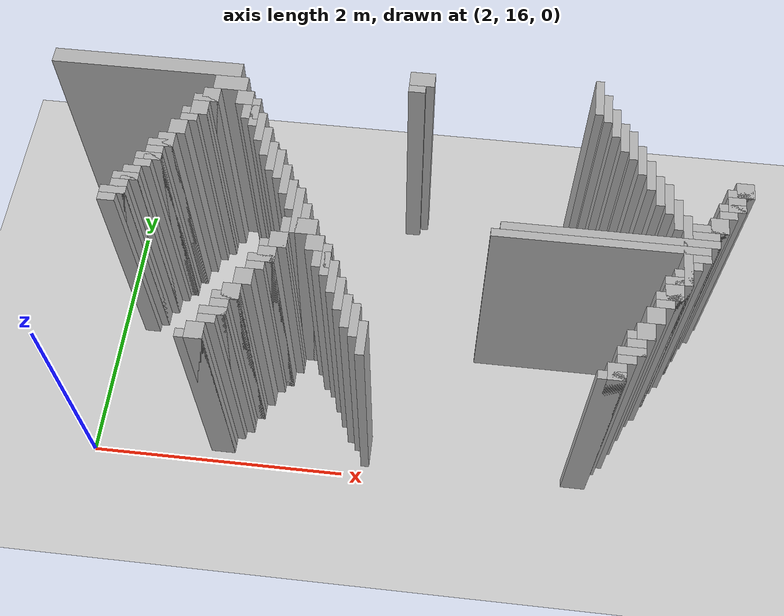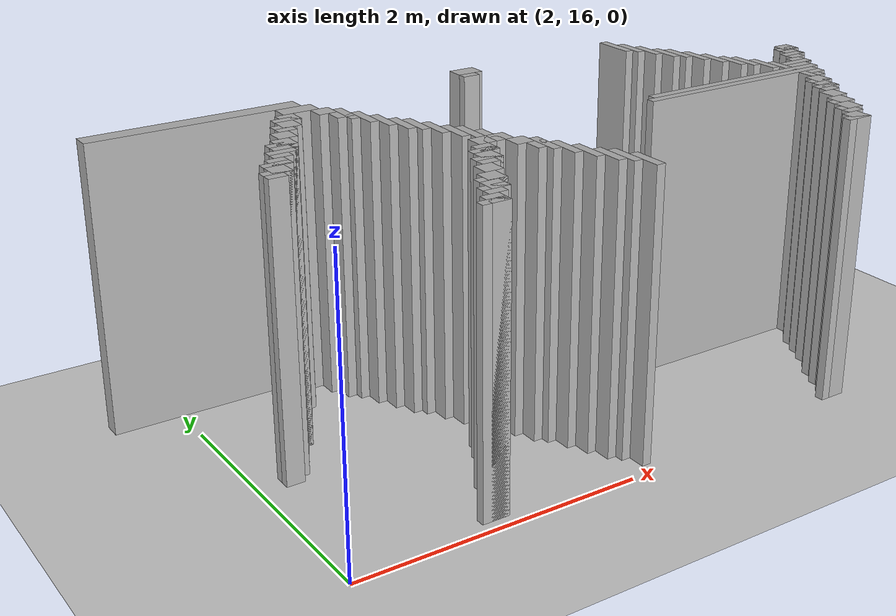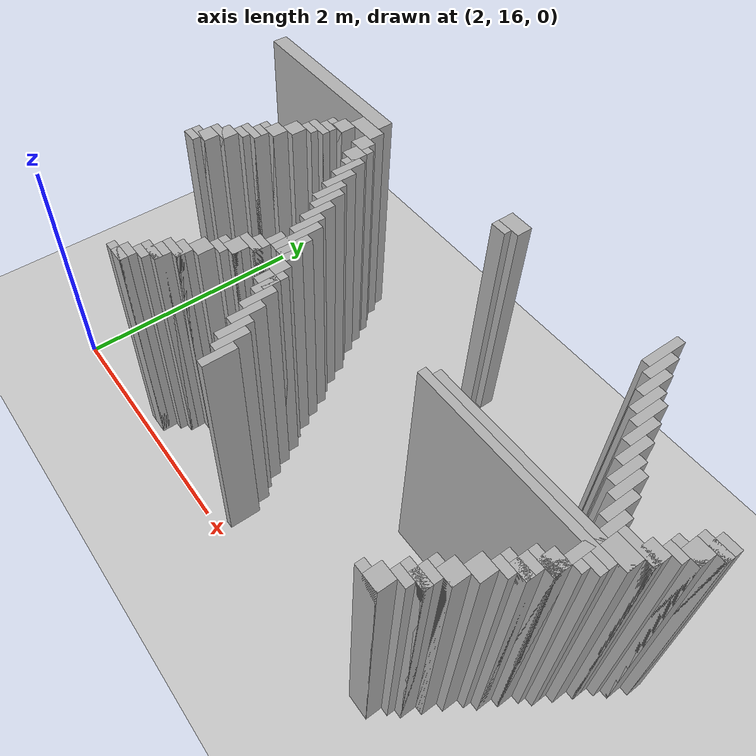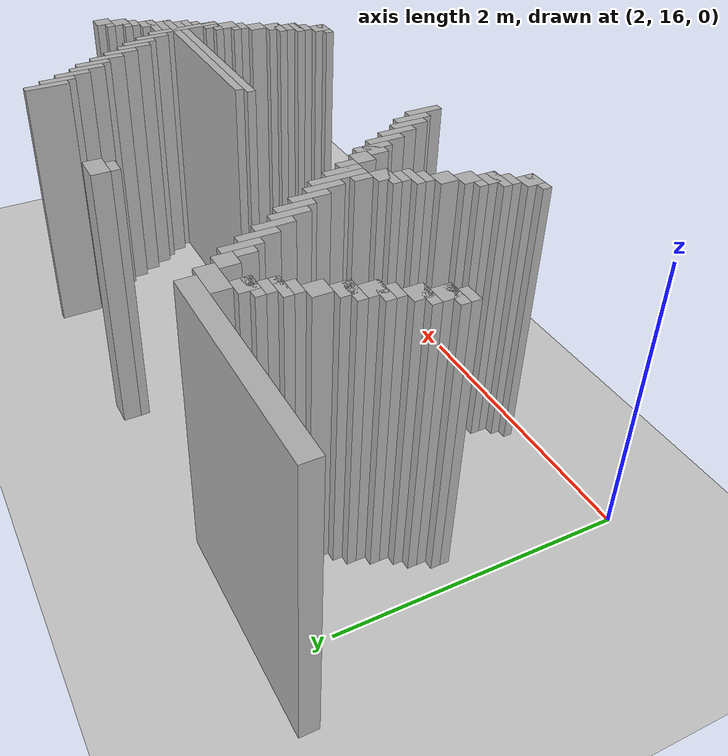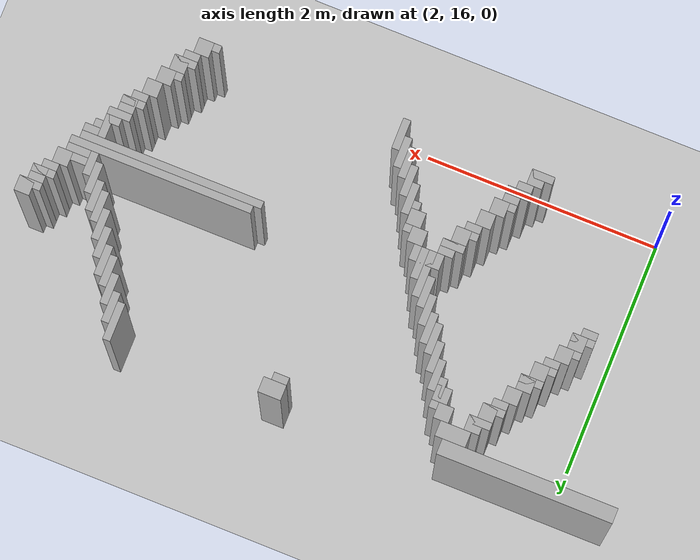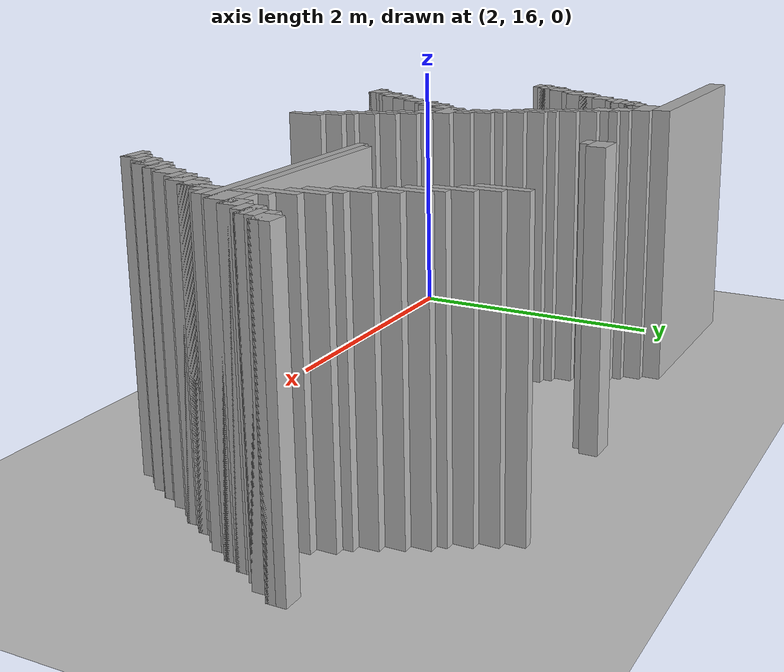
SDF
<sdf version="1.6">
 <world name="slam_world">
  <model name="ground_plane">
   <static>true</static>
   <link name="link">
    <collision name="collision">
     <geometry><plane><normal>0 0 1</normal><size>100 100</size></plane></geometry>
    </collision>
    <visual name="visual">
     <geometry><plane><normal>0 0 1</normal><size>100 100</size></plane></geometry>
     <material>
      <ambient>0.8 0.8 0.8 1</ambient>
      <diffuse>0.8 0.8 0.8 1</diffuse>
      <specular>0.8 0.8 0.8 1</specular>
     </material>
    </visual>
   </link>
  </model>
  <model name="wall_563">
   <static>true</static>
   <pose>5.712765957446808 18.414893617021274 1.0 0 0 0</pose>
   <link name="link">
    <collision name="collision">
     <geometry><box><size>0.06382978723404255 0.3191489361702127 2.0</size></box></geometry>
    </collision>
    <visual name="visual">
     <geometry><box><size>0.06382978723404255 0.3191489361702127 2.0</size></box></geometry>
     <material><ambient>0.5 0.5 0.5 1</ambient><diffuse>0.7 0.7 0.7 1</diffuse></material>
    </visual>
   </link>
  </model>
  <model name="wall_569">
   <static>true</static>
   <pose>4.372340425531915 18.446808510638295 1.0 0 0 0</pose>
   <link name="link">
    <collision name="collision">
     <geometry><box><size>0.19148936170212766 0.1276595744680851 2.0</size></box></geometry>
    </collision>
    <visual name="visual">
     <geometry><box><size>0.19148936170212766 0.1276595744680851 2.0</size></box></geometry>
     <material><ambient>0.5 0.5 0.5 1</ambient><diffuse>0.7 0.7 0.7 1</diffuse></material>
    </visual>
   </link>
  </model>
  <model name="wall_575">
   <static>true</static>
   <pose>2.2659574468085104 18.382978723404253 1.0 0 0 0</pose>
   <link name="link">
    <collision name="collision">
     <geometry><box><size>1.4680851063829785 0.1276595744680851 2.0</size></box></geometry>
    </collision>
    <visual name="visual">
     <geometry><box><size>1.4680851063829785 0.1276595744680851 2.0</size></box></geometry>
     <material><ambient>0.5 0.5 0.5 1</ambient><diffuse>0.7 0.7 0.7 1</diffuse></material>
    </visual>
   </link>
  </model>
  <model name="wall_576">
   <static>true</static>
   <pose>5.776595744680851 18.319148936170212 1.0 0 0 0</pose>
   <link name="link">
    <collision name="collision">
     <geometry><box><size>0.06382978723404255 0.2553191489361702 2.0</size></box></geometry>
    </collision>
    <visual name="visual">
     <geometry><box><size>0.06382978723404255 0.2553191489361702 2.0</size></box></geometry>
     <material><ambient>0.5 0.5 0.5 1</ambient><diffuse>0.7 0.7 0.7 1</diffuse></material>
    </visual>
   </link>
  </model>
  <model name="wall_582">
   <static>true</static>
   <pose>4.340425531914893 18.351063829787233 1.0 0 0 0</pose>
   <link name="link">
    <collision name="collision">
     <geometry><box><size>0.1276595744680851 0.06382978723404255 2.0</size></box></geometry>
    </collision>
    <visual name="visual">
     <geometry><box><size>0.1276595744680851 0.06382978723404255 2.0</size></box></geometry>
     <material><ambient>0.5 0.5 0.5 1</ambient><diffuse>0.7 0.7 0.7 1</diffuse></material>
    </visual>
   </link>
  </model>
  <model name="wall_587">
   <static>true</static>
   <pose>2.936170212765957 18.25531914893617 1.0 0 0 0</pose>
   <link name="link">
    <collision name="collision">
     <geometry><box><size>0.2553191489361702 0.1276595744680851 2.0</size></box></geometry>
    </collision>
    <visual name="visual">
     <geometry><box><size>0.2553191489361702 0.1276595744680851 2.0</size></box></geometry>
     <material><ambient>0.5 0.5 0.5 1</ambient><diffuse>0.7 0.7 0.7 1</diffuse></material>
    </visual>
   </link>
  </model>
  <model name="wall_588">
   <static>true</static>
   <pose>5.840425531914893 18.191489361702125 1.0 0 0 0</pose>
   <link name="link">
    <collision name="collision">
     <geometry><box><size>0.06382978723404255 0.2553191489361702 2.0</size></box></geometry>
    </collision>
    <visual name="visual">
     <geometry><box><size>0.06382978723404255 0.2553191489361702 2.0</size></box></geometry>
     <material><ambient>0.5 0.5 0.5 1</ambient><diffuse>0.7 0.7 0.7 1</diffuse></material>
    </visual>
   </link>
  </model>
  <model name="wall_601">
   <static>true</static>
   <pose>2.808510638297872 18.127659574468083 1.0 0 0 0</pose>
   <link name="link">
    <collision name="collision">
     <geometry><box><size>0.1276595744680851 0.1276595744680851 2.0</size></box></geometry>
    </collision>
    <visual name="visual">
     <geometry><box><size>0.1276595744680851 0.1276595744680851 2.0</size></box></geometry>
     <material><ambient>0.5 0.5 0.5 1</ambient><diffuse>0.7 0.7 0.7 1</diffuse></material>
    </visual>
   </link>
  </model>
  <model name="wall_602">
   <static>true</static>
   <pose>3.0638297872340425 18.127659574468083 1.0 0 0 0</pose>
   <link name="link">
    <collision name="collision">
     <geometry><box><size>0.1276595744680851 0.1276595744680851 2.0</size></box></geometry>
    </collision>
    <visual name="visual">
     <geometry><box><size>0.1276595744680851 0.1276595744680851 2.0</size></box></geometry>
     <material><ambient>0.5 0.5 0.5 1</ambient><diffuse>0.7 0.7 0.7 1</diffuse></material>
    </visual>
   </link>
  </model>
  <model name="wall_603">
   <static>true</static>
   <pose>5.904255319148936 18.06382978723404 1.0 0 0 0</pose>
   <link name="link">
    <collision name="collision">
     <geometry><box><size>0.06382978723404255 0.2553191489361702 2.0</size></box></geometry>
    </collision>
    <visual name="visual">
     <geometry><box><size>0.06382978723404255 0.2553191489361702 2.0</size></box></geometry>
     <material><ambient>0.5 0.5 0.5 1</ambient><diffuse>0.7 0.7 0.7 1</diffuse></material>
    </visual>
   </link>
  </model>
  <model name="wall_610">
   <static>true</static>
   <pose>2.7765957446808507 18.095744680851062 1.0 0 0 0</pose>
   <link name="link">
    <collision name="collision">
     <geometry><box><size>0.19148936170212766 0.06382978723404255 2.0</size></box></geometry>
    </collision>
    <visual name="visual">
     <geometry><box><size>0.19148936170212766 0.06382978723404255 2.0</size></box></geometry>
     <material><ambient>0.5 0.5 0.5 1</ambient><diffuse>0.7 0.7 0.7 1</diffuse></material>
    </visual>
   </link>
  </model>
  <model name="wall_611">
   <static>true</static>
   <pose>3.1595744680851063 18.0 1.0 0 0 0</pose>
   <link name="link">
    <collision name="collision">
     <geometry><box><size>0.06382978723404255 0.2553191489361702 2.0</size></box></geometry>
    </collision>
    <visual name="visual">
     <geometry><box><size>0.06382978723404255 0.2553191489361702 2.0</size></box></geometry>
     <material><ambient>0.5 0.5 0.5 1</ambient><diffuse>0.7 0.7 0.7 1</diffuse></material>
    </visual>
   </link>
  </model>
  <model name="wall_612">
   <static>true</static>
   <pose>5.968085106382978 18.0 1.0 0 0 0</pose>
   <link name="link">
    <collision name="collision">
     <geometry><box><size>0.06382978723404255 0.2553191489361702 2.0</size></box></geometry>
    </collision>
    <visual name="visual">
     <geometry><box><size>0.06382978723404255 0.2553191489361702 2.0</size></box></geometry>
     <material><ambient>0.5 0.5 0.5 1</ambient><diffuse>0.7 0.7 0.7 1</diffuse></material>
    </visual>
   </link>
  </model>
  <model name="wall_618">
   <static>true</static>
   <pose>2.7446808510638294 18.0 1.0 0 0 0</pose>
   <link name="link">
    <collision name="collision">
     <geometry><box><size>0.1276595744680851 0.1276595744680851 2.0</size></box></geometry>
    </collision>
    <visual name="visual">
     <geometry><box><size>0.1276595744680851 0.1276595744680851 2.0</size></box></geometry>
     <material><ambient>0.5 0.5 0.5 1</ambient><diffuse>0.7 0.7 0.7 1</diffuse></material>
    </visual>
   </link>
  </model>
  <model name="wall_619">
   <static>true</static>
   <pose>3.127659574468085 18.0 1.0 0 0 0</pose>
   <link name="link">
    <collision name="collision">
     <geometry><box><size>0.1276595744680851 0.1276595744680851 2.0</size></box></geometry>
    </collision>
    <visual name="visual">
     <geometry><box><size>0.1276595744680851 0.1276595744680851 2.0</size></box></geometry>
     <material><ambient>0.5 0.5 0.5 1</ambient><diffuse>0.7 0.7 0.7 1</diffuse></material>
    </visual>
   </link>
  </model>
  <model name="wall_625">
   <static>true</static>
   <pose>2.712765957446808 17.968085106382976 1.0 0 0 0</pose>
   <link name="link">
    <collision name="collision">
     <geometry><box><size>0.19148936170212766 0.06382978723404255 2.0</size></box></geometry>
    </collision>
    <visual name="visual">
     <geometry><box><size>0.19148936170212766 0.06382978723404255 2.0</size></box></geometry>
     <material><ambient>0.5 0.5 0.5 1</ambient><diffuse>0.7 0.7 0.7 1</diffuse></material>
    </visual>
   </link>
  </model>
  <model name="wall_626">
   <static>true</static>
   <pose>3.223404255319149 17.872340425531913 1.0 0 0 0</pose>
   <link name="link">
    <collision name="collision">
     <geometry><box><size>0.06382978723404255 0.2553191489361702 2.0</size></box></geometry>
    </collision>
    <visual name="visual">
     <geometry><box><size>0.06382978723404255 0.2553191489361702 2.0</size></box></geometry>
     <material><ambient>0.5 0.5 0.5 1</ambient><diffuse>0.7 0.7 0.7 1</diffuse></material>
    </visual>
   </link>
  </model>
  <model name="wall_627">
   <static>true</static>
   <pose>6.031914893617021 17.872340425531913 1.0 0 0 0</pose>
   <link name="link">
    <collision name="collision">
     <geometry><box><size>0.06382978723404255 0.2553191489361702 2.0</size></box></geometry>
    </collision>
    <visual name="visual">
     <geometry><box><size>0.06382978723404255 0.2553191489361702 2.0</size></box></geometry>
     <material><ambient>0.5 0.5 0.5 1</ambient><diffuse>0.7 0.7 0.7 1</diffuse></material>
    </visual>
   </link>
  </model>
  <model name="wall_633">
   <static>true</static>
   <pose>2.680851063829787 17.904255319148934 1.0 0 0 0</pose>
   <link name="link">
    <collision name="collision">
     <geometry><box><size>0.1276595744680851 0.06382978723404255 2.0</size></box></geometry>
    </collision>
    <visual name="visual">
     <geometry><box><size>0.1276595744680851 0.06382978723404255 2.0</size></box></geometry>
     <material><ambient>0.5 0.5 0.5 1</ambient><diffuse>0.7 0.7 0.7 1</diffuse></material>
    </visual>
   </link>
  </model>
  <model name="wall_638">
   <static>true</static>
   <pose>2.6170212765957444 17.80851063829787 1.0 0 0 0</pose>
   <link name="link">
    <collision name="collision">
     <geometry><box><size>0.1276595744680851 0.1276595744680851 2.0</size></box></geometry>
    </collision>
    <visual name="visual">
     <geometry><box><size>0.1276595744680851 0.1276595744680851 2.0</size></box></geometry>
     <material><ambient>0.5 0.5 0.5 1</ambient><diffuse>0.7 0.7 0.7 1</diffuse></material>
    </visual>
   </link>
  </model>
  <model name="wall_639">
   <static>true</static>
   <pose>3.2872340425531914 17.74468085106383 1.0 0 0 0</pose>
   <link name="link">
    <collision name="collision">
     <geometry><box><size>0.06382978723404255 0.2553191489361702 2.0</size></box></geometry>
    </collision>
    <visual name="visual">
     <geometry><box><size>0.06382978723404255 0.2553191489361702 2.0</size></box></geometry>
     <material><ambient>0.5 0.5 0.5 1</ambient><diffuse>0.7 0.7 0.7 1</diffuse></material>
    </visual>
   </link>
  </model>
  <model name="wall_640">
   <static>true</static>
   <pose>6.095744680851063 17.74468085106383 1.0 0 0 0</pose>
   <link name="link">
    <collision name="collision">
     <geometry><box><size>0.06382978723404255 0.2553191489361702 2.0</size></box></geometry>
    </collision>
    <visual name="visual">
     <geometry><box><size>0.06382978723404255 0.2553191489361702 2.0</size></box></geometry>
     <material><ambient>0.5 0.5 0.5 1</ambient><diffuse>0.7 0.7 0.7 1</diffuse></material>
    </visual>
   </link>
  </model>
  <model name="wall_647">
   <static>true</static>
   <pose>2.553191489361702 17.680851063829785 1.0 0 0 0</pose>
   <link name="link">
    <collision name="collision">
     <geometry><box><size>0.1276595744680851 0.1276595744680851 2.0</size></box></geometry>
    </collision>
    <visual name="visual">
     <geometry><box><size>0.1276595744680851 0.1276595744680851 2.0</size></box></geometry>
     <material><ambient>0.5 0.5 0.5 1</ambient><diffuse>0.7 0.7 0.7 1</diffuse></material>
    </visual>
   </link>
  </model>
  <model name="wall_648">
   <static>true</static>
   <pose>3.351063829787234 17.617021276595743 1.0 0 0 0</pose>
   <link name="link">
    <collision name="collision">
     <geometry><box><size>0.06382978723404255 0.2553191489361702 2.0</size></box></geometry>
    </collision>
    <visual name="visual">
     <geometry><box><size>0.06382978723404255 0.2553191489361702 2.0</size></box></geometry>
     <material><ambient>0.5 0.5 0.5 1</ambient><diffuse>0.7 0.7 0.7 1</diffuse></material>
    </visual>
   </link>
  </model>
  <model name="wall_649">
   <static>true</static>
   <pose>6.159574468085106 17.617021276595743 1.0 0 0 0</pose>
   <link name="link">
    <collision name="collision">
     <geometry><box><size>0.06382978723404255 0.2553191489361702 2.0</size></box></geometry>
    </collision>
    <visual name="visual">
     <geometry><box><size>0.06382978723404255 0.2553191489361702 2.0</size></box></geometry>
     <material><ambient>0.5 0.5 0.5 1</ambient><diffuse>0.7 0.7 0.7 1</diffuse></material>
    </visual>
   </link>
  </model>
  <model name="wall_650">
   <static>true</static>
   <pose>6.76595744680851 17.680851063829785 1.0 0 0 0</pose>
   <link name="link">
    <collision name="collision">
     <geometry><box><size>0.1276595744680851 0.1276595744680851 2.0</size></box></geometry>
    </collision>
    <visual name="visual">
     <geometry><box><size>0.1276595744680851 0.1276595744680851 2.0</size></box></geometry>
     <material><ambient>0.5 0.5 0.5 1</ambient><diffuse>0.7 0.7 0.7 1</diffuse></material>
    </visual>
   </link>
  </model>
  <model name="wall_656">
   <static>true</static>
   <pose>2.5212765957446805 17.648936170212764 1.0 0 0 0</pose>
   <link name="link">
    <collision name="collision">
     <geometry><box><size>0.19148936170212766 0.06382978723404255 2.0</size></box></geometry>
    </collision>
    <visual name="visual">
     <geometry><box><size>0.19148936170212766 0.06382978723404255 2.0</size></box></geometry>
     <material><ambient>0.5 0.5 0.5 1</ambient><diffuse>0.7 0.7 0.7 1</diffuse></material>
    </visual>
   </link>
  </model>
  <model name="wall_657">
   <static>true</static>
   <pose>3.4148936170212765 17.5531914893617 1.0 0 0 0</pose>
   <link name="link">
    <collision name="collision">
     <geometry><box><size>0.06382978723404255 0.2553191489361702 2.0</size></box></geometry>
    </collision>
    <visual name="visual">
     <geometry><box><size>0.06382978723404255 0.2553191489361702 2.0</size></box></geometry>
     <material><ambient>0.5 0.5 0.5 1</ambient><diffuse>0.7 0.7 0.7 1</diffuse></material>
    </visual>
   </link>
  </model>
  <model name="wall_658">
   <static>true</static>
   <pose>6.223404255319148 17.5531914893617 1.0 0 0 0</pose>
   <link name="link">
    <collision name="collision">
     <geometry><box><size>0.06382978723404255 0.2553191489361702 2.0</size></box></geometry>
    </collision>
    <visual name="visual">
     <geometry><box><size>0.06382978723404255 0.2553191489361702 2.0</size></box></geometry>
     <material><ambient>0.5 0.5 0.5 1</ambient><diffuse>0.7 0.7 0.7 1</diffuse></material>
    </visual>
   </link>
  </model>
  <model name="wall_659">
   <static>true</static>
   <pose>6.734042553191489 17.648936170212764 1.0 0 0 0</pose>
   <link name="link">
    <collision name="collision">
     <geometry><box><size>0.19148936170212766 0.06382978723404255 2.0</size></box></geometry>
    </collision>
    <visual name="visual">
     <geometry><box><size>0.19148936170212766 0.06382978723404255 2.0</size></box></geometry>
     <material><ambient>0.5 0.5 0.5 1</ambient><diffuse>0.7 0.7 0.7 1</diffuse></material>
    </visual>
   </link>
  </model>
  <model name="wall_664">
   <static>true</static>
   <pose>2.4893617021276593 17.5531914893617 1.0 0 0 0</pose>
   <link name="link">
    <collision name="collision">
     <geometry><box><size>0.1276595744680851 0.1276595744680851 2.0</size></box></geometry>
    </collision>
    <visual name="visual">
     <geometry><box><size>0.1276595744680851 0.1276595744680851 2.0</size></box></geometry>
     <material><ambient>0.5 0.5 0.5 1</ambient><diffuse>0.7 0.7 0.7 1</diffuse></material>
    </visual>
   </link>
  </model>
  <model name="wall_665">
   <static>true</static>
   <pose>6.702127659574468 17.5531914893617 1.0 0 0 0</pose>
   <link name="link">
    <collision name="collision">
     <geometry><box><size>0.1276595744680851 0.1276595744680851 2.0</size></box></geometry>
    </collision>
    <visual name="visual">
     <geometry><box><size>0.1276595744680851 0.1276595744680851 2.0</size></box></geometry>
     <material><ambient>0.5 0.5 0.5 1</ambient><diffuse>0.7 0.7 0.7 1</diffuse></material>
    </visual>
   </link>
  </model>
  <model name="wall_669">
   <static>true</static>
   <pose>2.457446808510638 17.52127659574468 1.0 0 0 0</pose>
   <link name="link">
    <collision name="collision">
     <geometry><box><size>0.19148936170212766 0.06382978723404255 2.0</size></box></geometry>
    </collision>
    <visual name="visual">
     <geometry><box><size>0.19148936170212766 0.06382978723404255 2.0</size></box></geometry>
     <material><ambient>0.5 0.5 0.5 1</ambient><diffuse>0.7 0.7 0.7 1</diffuse></material>
    </visual>
   </link>
  </model>
  <model name="wall_670">
   <static>true</static>
   <pose>3.478723404255319 17.425531914893615 1.0 0 0 0</pose>
   <link name="link">
    <collision name="collision">
     <geometry><box><size>0.06382978723404255 0.2553191489361702 2.0</size></box></geometry>
    </collision>
    <visual name="visual">
     <geometry><box><size>0.06382978723404255 0.2553191489361702 2.0</size></box></geometry>
     <material><ambient>0.5 0.5 0.5 1</ambient><diffuse>0.7 0.7 0.7 1</diffuse></material>
    </visual>
   </link>
  </model>
  <model name="wall_671">
   <static>true</static>
   <pose>6.287234042553191 17.425531914893615 1.0 0 0 0</pose>
   <link name="link">
    <collision name="collision">
     <geometry><box><size>0.06382978723404255 0.2553191489361702 2.0</size></box></geometry>
    </collision>
    <visual name="visual">
     <geometry><box><size>0.06382978723404255 0.2553191489361702 2.0</size></box></geometry>
     <material><ambient>0.5 0.5 0.5 1</ambient><diffuse>0.7 0.7 0.7 1</diffuse></material>
    </visual>
   </link>
  </model>
  <model name="wall_672">
   <static>true</static>
   <pose>6.670212765957446 17.52127659574468 1.0 0 0 0</pose>
   <link name="link">
    <collision name="collision">
     <geometry><box><size>0.19148936170212766 0.06382978723404255 2.0</size></box></geometry>
    </collision>
    <visual name="visual">
     <geometry><box><size>0.19148936170212766 0.06382978723404255 2.0</size></box></geometry>
     <material><ambient>0.5 0.5 0.5 1</ambient><diffuse>0.7 0.7 0.7 1</diffuse></material>
    </visual>
   </link>
  </model>
  <model name="wall_677">
   <static>true</static>
   <pose>2.4255319148936167 17.457446808510635 1.0 0 0 0</pose>
   <link name="link">
    <collision name="collision">
     <geometry><box><size>0.1276595744680851 0.06382978723404255 2.0</size></box></geometry>
    </collision>
    <visual name="visual">
     <geometry><box><size>0.1276595744680851 0.06382978723404255 2.0</size></box></geometry>
     <material><ambient>0.5 0.5 0.5 1</ambient><diffuse>0.7 0.7 0.7 1</diffuse></material>
    </visual>
   </link>
  </model>
  <model name="wall_678">
   <static>true</static>
   <pose>6.638297872340425 17.457446808510635 1.0 0 0 0</pose>
   <link name="link">
    <collision name="collision">
     <geometry><box><size>0.1276595744680851 0.06382978723404255 2.0</size></box></geometry>
    </collision>
    <visual name="visual">
     <geometry><box><size>0.1276595744680851 0.06382978723404255 2.0</size></box></geometry>
     <material><ambient>0.5 0.5 0.5 1</ambient><diffuse>0.7 0.7 0.7 1</diffuse></material>
    </visual>
   </link>
  </model>
  <model name="wall_682">
   <static>true</static>
   <pose>2.361702127659574 17.361702127659573 1.0 0 0 0</pose>
   <link name="link">
    <collision name="collision">
     <geometry><box><size>0.1276595744680851 0.1276595744680851 2.0</size></box></geometry>
    </collision>
    <visual name="visual">
     <geometry><box><size>0.1276595744680851 0.1276595744680851 2.0</size></box></geometry>
     <material><ambient>0.5 0.5 0.5 1</ambient><diffuse>0.7 0.7 0.7 1</diffuse></material>
    </visual>
   </link>
  </model>
  <model name="wall_683">
   <static>true</static>
   <pose>3.5425531914893615 17.29787234042553 1.0 0 0 0</pose>
   <link name="link">
    <collision name="collision">
     <geometry><box><size>0.06382978723404255 0.2553191489361702 2.0</size></box></geometry>
    </collision>
    <visual name="visual">
     <geometry><box><size>0.06382978723404255 0.2553191489361702 2.0</size></box></geometry>
     <material><ambient>0.5 0.5 0.5 1</ambient><diffuse>0.7 0.7 0.7 1</diffuse></material>
    </visual>
   </link>
  </model>
  <model name="wall_684">
   <static>true</static>
   <pose>6.3510638297872335 17.138297872340424 1.0 0 0 0</pose>
   <link name="link">
    <collision name="collision">
     <geometry><box><size>0.06382978723404255 0.5744680851063829 2.0</size></box></geometry>
    </collision>
    <visual name="visual">
     <geometry><box><size>0.06382978723404255 0.5744680851063829 2.0</size></box></geometry>
     <material><ambient>0.5 0.5 0.5 1</ambient><diffuse>0.7 0.7 0.7 1</diffuse></material>
    </visual>
   </link>
  </model>
  <model name="wall_685">
   <static>true</static>
   <pose>6.574468085106383 17.361702127659573 1.0 0 0 0</pose>
   <link name="link">
    <collision name="collision">
     <geometry><box><size>0.1276595744680851 0.1276595744680851 2.0</size></box></geometry>
    </collision>
    <visual name="visual">
     <geometry><box><size>0.1276595744680851 0.1276595744680851 2.0</size></box></geometry>
     <material><ambient>0.5 0.5 0.5 1</ambient><diffuse>0.7 0.7 0.7 1</diffuse></material>
    </visual>
   </link>
  </model>
  <model name="wall_691">
   <static>true</static>
   <pose>2.329787234042553 17.329787234042552 1.0 0 0 0</pose>
   <link name="link">
    <collision name="collision">
     <geometry><box><size>0.19148936170212766 0.06382978723404255 2.0</size></box></geometry>
    </collision>
    <visual name="visual">
     <geometry><box><size>0.19148936170212766 0.06382978723404255 2.0</size></box></geometry>
     <material><ambient>0.5 0.5 0.5 1</ambient><diffuse>0.7 0.7 0.7 1</diffuse></material>
    </visual>
   </link>
  </model>
  <model name="wall_692">
   <static>true</static>
   <pose>3.606382978723404 17.170212765957444 1.0 0 0 0</pose>
   <link name="link">
    <collision name="collision">
     <geometry><box><size>0.06382978723404255 0.3829787234042553 2.0</size></box></geometry>
    </collision>
    <visual name="visual">
     <geometry><box><size>0.06382978723404255 0.3829787234042553 2.0</size></box></geometry>
     <material><ambient>0.5 0.5 0.5 1</ambient><diffuse>0.7 0.7 0.7 1</diffuse></material>
    </visual>
   </link>
  </model>
  <model name="wall_693">
   <static>true</static>
   <pose>6.51063829787234 17.329787234042552 1.0 0 0 0</pose>
   <link name="link">
    <collision name="collision">
     <geometry><box><size>0.2553191489361702 0.06382978723404255 2.0</size></box></geometry>
    </collision>
    <visual name="visual">
     <geometry><box><size>0.2553191489361702 0.06382978723404255 2.0</size></box></geometry>
     <material><ambient>0.5 0.5 0.5 1</ambient><diffuse>0.7 0.7 0.7 1</diffuse></material>
    </visual>
   </link>
  </model>
  <model name="wall_697">
   <static>true</static>
   <pose>2.2978723404255317 17.23404255319149 1.0 0 0 0</pose>
   <link name="link">
    <collision name="collision">
     <geometry><box><size>0.1276595744680851 0.1276595744680851 2.0</size></box></geometry>
    </collision>
    <visual name="visual">
     <geometry><box><size>0.1276595744680851 0.1276595744680851 2.0</size></box></geometry>
     <material><ambient>0.5 0.5 0.5 1</ambient><diffuse>0.7 0.7 0.7 1</diffuse></material>
    </visual>
   </link>
  </model>
  <model name="wall_698">
   <static>true</static>
   <pose>6.478723404255319 17.23404255319149 1.0 0 0 0</pose>
   <link name="link">
    <collision name="collision">
     <geometry><box><size>0.19148936170212766 0.1276595744680851 2.0</size></box></geometry>
    </collision>
    <visual name="visual">
     <geometry><box><size>0.19148936170212766 0.1276595744680851 2.0</size></box></geometry>
     <material><ambient>0.5 0.5 0.5 1</ambient><diffuse>0.7 0.7 0.7 1</diffuse></material>
    </visual>
   </link>
  </model>
  <model name="wall_702">
   <static>true</static>
   <pose>2.2659574468085104 17.202127659574465 1.0 0 0 0</pose>
   <link name="link">
    <collision name="collision">
     <geometry><box><size>0.19148936170212766 0.06382978723404255 2.0</size></box></geometry>
    </collision>
    <visual name="visual">
     <geometry><box><size>0.19148936170212766 0.06382978723404255 2.0</size></box></geometry>
     <material><ambient>0.5 0.5 0.5 1</ambient><diffuse>0.7 0.7 0.7 1</diffuse></material>
    </visual>
   </link>
  </model>
  <model name="wall_703">
   <static>true</static>
   <pose>3.6702127659574466 17.106382978723403 1.0 0 0 0</pose>
   <link name="link">
    <collision name="collision">
     <geometry><box><size>0.06382978723404255 0.2553191489361702 2.0</size></box></geometry>
    </collision>
    <visual name="visual">
     <geometry><box><size>0.06382978723404255 0.2553191489361702 2.0</size></box></geometry>
     <material><ambient>0.5 0.5 0.5 1</ambient><diffuse>0.7 0.7 0.7 1</diffuse></material>
    </visual>
   </link>
  </model>
  <model name="wall_704">
   <static>true</static>
   <pose>5.8085106382978715 17.202127659574465 1.0 0 0 0</pose>
   <link name="link">
    <collision name="collision">
     <geometry><box><size>1.5319148936170213 0.06382978723404255 2.0</size></box></geometry>
    </collision>
    <visual name="visual">
     <geometry><box><size>1.5319148936170213 0.06382978723404255 2.0</size></box></geometry>
     <material><ambient>0.5 0.5 0.5 1</ambient><diffuse>0.7 0.7 0.7 1</diffuse></material>
    </visual>
   </link>
  </model>
  <model name="wall_708">
   <static>true</static>
   <pose>2.234042553191489 17.138297872340424 1.0 0 0 0</pose>
   <link name="link">
    <collision name="collision">
     <geometry><box><size>0.1276595744680851 0.06382978723404255 2.0</size></box></geometry>
    </collision>
    <visual name="visual">
     <geometry><box><size>0.1276595744680851 0.06382978723404255 2.0</size></box></geometry>
     <material><ambient>0.5 0.5 0.5 1</ambient><diffuse>0.7 0.7 0.7 1</diffuse></material>
    </visual>
   </link>
  </model>
  <model name="wall_709">
   <static>true</static>
   <pose>5.744680851063829 17.138297872340424 1.0 0 0 0</pose>
   <link name="link">
    <collision name="collision">
     <geometry><box><size>1.5319148936170213 0.06382978723404255 2.0</size></box></geometry>
    </collision>
    <visual name="visual">
     <geometry><box><size>1.5319148936170213 0.06382978723404255 2.0</size></box></geometry>
     <material><ambient>0.5 0.5 0.5 1</ambient><diffuse>0.7 0.7 0.7 1</diffuse></material>
    </visual>
   </link>
  </model>
  <model name="wall_714">
   <static>true</static>
   <pose>3.6382978723404253 17.04255319148936 1.0 0 0 0</pose>
   <link name="link">
    <collision name="collision">
     <geometry><box><size>0.2553191489361702 0.1276595744680851 2.0</size></box></geometry>
    </collision>
    <visual name="visual">
     <geometry><box><size>0.2553191489361702 0.1276595744680851 2.0</size></box></geometry>
     <material><ambient>0.5 0.5 0.5 1</ambient><diffuse>0.7 0.7 0.7 1</diffuse></material>
    </visual>
   </link>
  </model>
  <model name="wall_715">
   <static>true</static>
   <pose>6.446808510638298 17.074468085106382 1.0 0 0 0</pose>
   <link name="link">
    <collision name="collision">
     <geometry><box><size>0.1276595744680851 0.06382978723404255 2.0</size></box></geometry>
    </collision>
    <visual name="visual">
     <geometry><box><size>0.1276595744680851 0.06382978723404255 2.0</size></box></geometry>
     <material><ambient>0.5 0.5 0.5 1</ambient><diffuse>0.7 0.7 0.7 1</diffuse></material>
    </visual>
   </link>
  </model>
  <model name="wall_721">
   <static>true</static>
   <pose>6.414893617021276 17.01063829787234 1.0 0 0 0</pose>
   <link name="link">
    <collision name="collision">
     <geometry><box><size>0.06382978723404255 0.06382978723404255 2.0</size></box></geometry>
    </collision>
    <visual name="visual">
     <geometry><box><size>0.06382978723404255 0.06382978723404255 2.0</size></box></geometry>
     <material><ambient>0.5 0.5 0.5 1</ambient><diffuse>0.7 0.7 0.7 1</diffuse></material>
    </visual>
   </link>
  </model>
  <model name="wall_725">
   <static>true</static>
   <pose>3.5106382978723403 16.914893617021274 1.0 0 0 0</pose>
   <link name="link">
    <collision name="collision">
     <geometry><box><size>0.1276595744680851 0.1276595744680851 2.0</size></box></geometry>
    </collision>
    <visual name="visual">
     <geometry><box><size>0.1276595744680851 0.1276595744680851 2.0</size></box></geometry>
     <material><ambient>0.5 0.5 0.5 1</ambient><diffuse>0.7 0.7 0.7 1</diffuse></material>
    </visual>
   </link>
  </model>
  <model name="wall_726">
   <static>true</static>
   <pose>3.7659574468085104 16.914893617021274 1.0 0 0 0</pose>
   <link name="link">
    <collision name="collision">
     <geometry><box><size>0.1276595744680851 0.1276595744680851 2.0</size></box></geometry>
    </collision>
    <visual name="visual">
     <geometry><box><size>0.1276595744680851 0.1276595744680851 2.0</size></box></geometry>
     <material><ambient>0.5 0.5 0.5 1</ambient><diffuse>0.7 0.7 0.7 1</diffuse></material>
    </visual>
   </link>
  </model>
  <model name="wall_727">
   <static>true</static>
   <pose>6.319148936170213 16.914893617021274 1.0 0 0 0</pose>
   <link name="link">
    <collision name="collision">
     <geometry><box><size>0.1276595744680851 0.1276595744680851 2.0</size></box></geometry>
    </collision>
    <visual name="visual">
     <geometry><box><size>0.1276595744680851 0.1276595744680851 2.0</size></box></geometry>
     <material><ambient>0.5 0.5 0.5 1</ambient><diffuse>0.7 0.7 0.7 1</diffuse></material>
    </visual>
   </link>
  </model>
  <model name="wall_735">
   <static>true</static>
   <pose>3.478723404255319 16.882978723404253 1.0 0 0 0</pose>
   <link name="link">
    <collision name="collision">
     <geometry><box><size>0.19148936170212766 0.06382978723404255 2.0</size></box></geometry>
    </collision>
    <visual name="visual">
     <geometry><box><size>0.19148936170212766 0.06382978723404255 2.0</size></box></geometry>
     <material><ambient>0.5 0.5 0.5 1</ambient><diffuse>0.7 0.7 0.7 1</diffuse></material>
    </visual>
   </link>
  </model>
  <model name="wall_736">
   <static>true</static>
   <pose>3.861702127659574 16.78723404255319 1.0 0 0 0</pose>
   <link name="link">
    <collision name="collision">
     <geometry><box><size>0.06382978723404255 0.2553191489361702 2.0</size></box></geometry>
    </collision>
    <visual name="visual">
     <geometry><box><size>0.06382978723404255 0.2553191489361702 2.0</size></box></geometry>
     <material><ambient>0.5 0.5 0.5 1</ambient><diffuse>0.7 0.7 0.7 1</diffuse></material>
    </visual>
   </link>
  </model>
  <model name="wall_737">
   <static>true</static>
   <pose>6.287234042553191 16.882978723404253 1.0 0 0 0</pose>
   <link name="link">
    <collision name="collision">
     <geometry><box><size>0.19148936170212766 0.06382978723404255 2.0</size></box></geometry>
    </collision>
    <visual name="visual">
     <geometry><box><size>0.19148936170212766 0.06382978723404255 2.0</size></box></geometry>
     <material><ambient>0.5 0.5 0.5 1</ambient><diffuse>0.7 0.7 0.7 1</diffuse></material>
    </visual>
   </link>
  </model>
  <model name="wall_745">
   <static>true</static>
   <pose>3.4468085106382977 16.78723404255319 1.0 0 0 0</pose>
   <link name="link">
    <collision name="collision">
     <geometry><box><size>0.1276595744680851 0.1276595744680851 2.0</size></box></geometry>
    </collision>
    <visual name="visual">
     <geometry><box><size>0.1276595744680851 0.1276595744680851 2.0</size></box></geometry>
     <material><ambient>0.5 0.5 0.5 1</ambient><diffuse>0.7 0.7 0.7 1</diffuse></material>
    </visual>
   </link>
  </model>
  <model name="wall_746">
   <static>true</static>
   <pose>3.829787234042553 16.78723404255319 1.0 0 0 0</pose>
   <link name="link">
    <collision name="collision">
     <geometry><box><size>0.1276595744680851 0.1276595744680851 2.0</size></box></geometry>
    </collision>
    <visual name="visual">
     <geometry><box><size>0.1276595744680851 0.1276595744680851 2.0</size></box></geometry>
     <material><ambient>0.5 0.5 0.5 1</ambient><diffuse>0.7 0.7 0.7 1</diffuse></material>
    </visual>
   </link>
  </model>
  <model name="wall_747">
   <static>true</static>
   <pose>6.25531914893617 16.78723404255319 1.0 0 0 0</pose>
   <link name="link">
    <collision name="collision">
     <geometry><box><size>0.1276595744680851 0.1276595744680851 2.0</size></box></geometry>
    </collision>
    <visual name="visual">
     <geometry><box><size>0.1276595744680851 0.1276595744680851 2.0</size></box></geometry>
     <material><ambient>0.5 0.5 0.5 1</ambient><diffuse>0.7 0.7 0.7 1</diffuse></material>
    </visual>
   </link>
  </model>
  <model name="wall_755">
   <static>true</static>
   <pose>3.4148936170212765 16.75531914893617 1.0 0 0 0</pose>
   <link name="link">
    <collision name="collision">
     <geometry><box><size>0.19148936170212766 0.06382978723404255 2.0</size></box></geometry>
    </collision>
    <visual name="visual">
     <geometry><box><size>0.19148936170212766 0.06382978723404255 2.0</size></box></geometry>
     <material><ambient>0.5 0.5 0.5 1</ambient><diffuse>0.7 0.7 0.7 1</diffuse></material>
    </visual>
   </link>
  </model>
  <model name="wall_756">
   <static>true</static>
   <pose>3.9255319148936167 16.659574468085104 1.0 0 0 0</pose>
   <link name="link">
    <collision name="collision">
     <geometry><box><size>0.06382978723404255 0.2553191489361702 2.0</size></box></geometry>
    </collision>
    <visual name="visual">
     <geometry><box><size>0.06382978723404255 0.2553191489361702 2.0</size></box></geometry>
     <material><ambient>0.5 0.5 0.5 1</ambient><diffuse>0.7 0.7 0.7 1</diffuse></material>
    </visual>
   </link>
  </model>
  <model name="wall_757">
   <static>true</static>
   <pose>6.223404255319148 16.75531914893617 1.0 0 0 0</pose>
   <link name="link">
    <collision name="collision">
     <geometry><box><size>0.19148936170212766 0.06382978723404255 2.0</size></box></geometry>
    </collision>
    <visual name="visual">
     <geometry><box><size>0.19148936170212766 0.06382978723404255 2.0</size></box></geometry>
     <material><ambient>0.5 0.5 0.5 1</ambient><diffuse>0.7 0.7 0.7 1</diffuse></material>
    </visual>
   </link>
  </model>
  <model name="wall_765">
   <static>true</static>
   <pose>3.382978723404255 16.691489361702125 1.0 0 0 0</pose>
   <link name="link">
    <collision name="collision">
     <geometry><box><size>0.1276595744680851 0.06382978723404255 2.0</size></box></geometry>
    </collision>
    <visual name="visual">
     <geometry><box><size>0.1276595744680851 0.06382978723404255 2.0</size></box></geometry>
     <material><ambient>0.5 0.5 0.5 1</ambient><diffuse>0.7 0.7 0.7 1</diffuse></material>
    </visual>
   </link>
  </model>
  <model name="wall_766">
   <static>true</static>
   <pose>6.191489361702128 16.691489361702125 1.0 0 0 0</pose>
   <link name="link">
    <collision name="collision">
     <geometry><box><size>0.1276595744680851 0.06382978723404255 2.0</size></box></geometry>
    </collision>
    <visual name="visual">
     <geometry><box><size>0.1276595744680851 0.06382978723404255 2.0</size></box></geometry>
     <material><ambient>0.5 0.5 0.5 1</ambient><diffuse>0.7 0.7 0.7 1</diffuse></material>
    </visual>
   </link>
  </model>
  <model name="wall_772">
   <static>true</static>
   <pose>3.3191489361702127 16.595744680851062 1.0 0 0 0</pose>
   <link name="link">
    <collision name="collision">
     <geometry><box><size>0.1276595744680851 0.1276595744680851 2.0</size></box></geometry>
    </collision>
    <visual name="visual">
     <geometry><box><size>0.1276595744680851 0.1276595744680851 2.0</size></box></geometry>
     <material><ambient>0.5 0.5 0.5 1</ambient><diffuse>0.7 0.7 0.7 1</diffuse></material>
    </visual>
   </link>
  </model>
  <model name="wall_773">
   <static>true</static>
   <pose>3.9893617021276593 16.53191489361702 1.0 0 0 0</pose>
   <link name="link">
    <collision name="collision">
     <geometry><box><size>0.06382978723404255 0.2553191489361702 2.0</size></box></geometry>
    </collision>
    <visual name="visual">
     <geometry><box><size>0.06382978723404255 0.2553191489361702 2.0</size></box></geometry>
     <material><ambient>0.5 0.5 0.5 1</ambient><diffuse>0.7 0.7 0.7 1</diffuse></material>
    </visual>
   </link>
  </model>
  <model name="wall_774">
   <static>true</static>
   <pose>6.127659574468085 16.595744680851062 1.0 0 0 0</pose>
   <link name="link">
    <collision name="collision">
     <geometry><box><size>0.1276595744680851 0.1276595744680851 2.0</size></box></geometry>
    </collision>
    <visual name="visual">
     <geometry><box><size>0.1276595744680851 0.1276595744680851 2.0</size></box></geometry>
     <material><ambient>0.5 0.5 0.5 1</ambient><diffuse>0.7 0.7 0.7 1</diffuse></material>
    </visual>
   </link>
  </model>
  <model name="wall_782">
   <static>true</static>
   <pose>3.25531914893617 16.46808510638298 1.0 0 0 0</pose>
   <link name="link">
    <collision name="collision">
     <geometry><box><size>0.1276595744680851 0.1276595744680851 2.0</size></box></geometry>
    </collision>
    <visual name="visual">
     <geometry><box><size>0.1276595744680851 0.1276595744680851 2.0</size></box></geometry>
     <material><ambient>0.5 0.5 0.5 1</ambient><diffuse>0.7 0.7 0.7 1</diffuse></material>
    </visual>
   </link>
  </model>
  <model name="wall_783">
   <static>true</static>
   <pose>4.053191489361701 16.404255319148934 1.0 0 0 0</pose>
   <link name="link">
    <collision name="collision">
     <geometry><box><size>0.06382978723404255 0.2553191489361702 2.0</size></box></geometry>
    </collision>
    <visual name="visual">
     <geometry><box><size>0.06382978723404255 0.2553191489361702 2.0</size></box></geometry>
     <material><ambient>0.5 0.5 0.5 1</ambient><diffuse>0.7 0.7 0.7 1</diffuse></material>
    </visual>
   </link>
  </model>
  <model name="wall_784">
   <static>true</static>
   <pose>6.063829787234042 16.46808510638298 1.0 0 0 0</pose>
   <link name="link">
    <collision name="collision">
     <geometry><box><size>0.1276595744680851 0.1276595744680851 2.0</size></box></geometry>
    </collision>
    <visual name="visual">
     <geometry><box><size>0.1276595744680851 0.1276595744680851 2.0</size></box></geometry>
     <material><ambient>0.5 0.5 0.5 1</ambient><diffuse>0.7 0.7 0.7 1</diffuse></material>
    </visual>
   </link>
  </model>
  <model name="wall_792">
   <static>true</static>
   <pose>3.223404255319149 16.436170212765955 1.0 0 0 0</pose>
   <link name="link">
    <collision name="collision">
     <geometry><box><size>0.19148936170212766 0.06382978723404255 2.0</size></box></geometry>
    </collision>
    <visual name="visual">
     <geometry><box><size>0.19148936170212766 0.06382978723404255 2.0</size></box></geometry>
     <material><ambient>0.5 0.5 0.5 1</ambient><diffuse>0.7 0.7 0.7 1</diffuse></material>
    </visual>
   </link>
  </model>
  <model name="wall_793">
   <static>true</static>
   <pose>4.117021276595745 16.340425531914892 1.0 0 0 0</pose>
   <link name="link">
    <collision name="collision">
     <geometry><box><size>0.06382978723404255 0.2553191489361702 2.0</size></box></geometry>
    </collision>
    <visual name="visual">
     <geometry><box><size>0.06382978723404255 0.2553191489361702 2.0</size></box></geometry>
     <material><ambient>0.5 0.5 0.5 1</ambient><diffuse>0.7 0.7 0.7 1</diffuse></material>
    </visual>
   </link>
  </model>
  <model name="wall_794">
   <static>true</static>
   <pose>6.031914893617021 16.436170212765955 1.0 0 0 0</pose>
   <link name="link">
    <collision name="collision">
     <geometry><box><size>0.19148936170212766 0.06382978723404255 2.0</size></box></geometry>
    </collision>
    <visual name="visual">
     <geometry><box><size>0.19148936170212766 0.06382978723404255 2.0</size></box></geometry>
     <material><ambient>0.5 0.5 0.5 1</ambient><diffuse>0.7 0.7 0.7 1</diffuse></material>
    </visual>
   </link>
  </model>
  <model name="wall_802">
   <static>true</static>
   <pose>3.1914893617021276 16.340425531914892 1.0 0 0 0</pose>
   <link name="link">
    <collision name="collision">
     <geometry><box><size>0.1276595744680851 0.1276595744680851 2.0</size></box></geometry>
    </collision>
    <visual name="visual">
     <geometry><box><size>0.1276595744680851 0.1276595744680851 2.0</size></box></geometry>
     <material><ambient>0.5 0.5 0.5 1</ambient><diffuse>0.7 0.7 0.7 1</diffuse></material>
    </visual>
   </link>
  </model>
  <model name="wall_803">
   <static>true</static>
   <pose>5.999999999999999 16.340425531914892 1.0 0 0 0</pose>
   <link name="link">
    <collision name="collision">
     <geometry><box><size>0.1276595744680851 0.1276595744680851 2.0</size></box></geometry>
    </collision>
    <visual name="visual">
     <geometry><box><size>0.1276595744680851 0.1276595744680851 2.0</size></box></geometry>
     <material><ambient>0.5 0.5 0.5 1</ambient><diffuse>0.7 0.7 0.7 1</diffuse></material>
    </visual>
   </link>
  </model>
  <model name="wall_809">
   <static>true</static>
   <pose>3.1595744680851063 16.30851063829787 1.0 0 0 0</pose>
   <link name="link">
    <collision name="collision">
     <geometry><box><size>0.19148936170212766 0.06382978723404255 2.0</size></box></geometry>
    </collision>
    <visual name="visual">
     <geometry><box><size>0.19148936170212766 0.06382978723404255 2.0</size></box></geometry>
     <material><ambient>0.5 0.5 0.5 1</ambient><diffuse>0.7 0.7 0.7 1</diffuse></material>
    </visual>
   </link>
  </model>
  <model name="wall_810">
   <static>true</static>
   <pose>4.180851063829787 16.212765957446805 1.0 0 0 0</pose>
   <link name="link">
    <collision name="collision">
     <geometry><box><size>0.06382978723404255 0.2553191489361702 2.0</size></box></geometry>
    </collision>
    <visual name="visual">
     <geometry><box><size>0.06382978723404255 0.2553191489361702 2.0</size></box></geometry>
     <material><ambient>0.5 0.5 0.5 1</ambient><diffuse>0.7 0.7 0.7 1</diffuse></material>
    </visual>
   </link>
  </model>
  <model name="wall_811">
   <static>true</static>
   <pose>5.968085106382978 16.30851063829787 1.0 0 0 0</pose>
   <link name="link">
    <collision name="collision">
     <geometry><box><size>0.19148936170212766 0.06382978723404255 2.0</size></box></geometry>
    </collision>
    <visual name="visual">
     <geometry><box><size>0.19148936170212766 0.06382978723404255 2.0</size></box></geometry>
     <material><ambient>0.5 0.5 0.5 1</ambient><diffuse>0.7 0.7 0.7 1</diffuse></material>
    </visual>
   </link>
  </model>
  <model name="wall_819">
   <static>true</static>
   <pose>3.127659574468085 16.24468085106383 1.0 0 0 0</pose>
   <link name="link">
    <collision name="collision">
     <geometry><box><size>0.1276595744680851 0.06382978723404255 2.0</size></box></geometry>
    </collision>
    <visual name="visual">
     <geometry><box><size>0.1276595744680851 0.06382978723404255 2.0</size></box></geometry>
     <material><ambient>0.5 0.5 0.5 1</ambient><diffuse>0.7 0.7 0.7 1</diffuse></material>
    </visual>
   </link>
  </model>
  <model name="wall_820">
   <static>true</static>
   <pose>5.936170212765957 16.24468085106383 1.0 0 0 0</pose>
   <link name="link">
    <collision name="collision">
     <geometry><box><size>0.1276595744680851 0.06382978723404255 2.0</size></box></geometry>
    </collision>
    <visual name="visual">
     <geometry><box><size>0.1276595744680851 0.06382978723404255 2.0</size></box></geometry>
     <material><ambient>0.5 0.5 0.5 1</ambient><diffuse>0.7 0.7 0.7 1</diffuse></material>
    </visual>
   </link>
  </model>
  <model name="wall_826">
   <static>true</static>
   <pose>3.0638297872340425 16.148936170212764 1.0 0 0 0</pose>
   <link name="link">
    <collision name="collision">
     <geometry><box><size>0.1276595744680851 0.1276595744680851 2.0</size></box></geometry>
    </collision>
    <visual name="visual">
     <geometry><box><size>0.1276595744680851 0.1276595744680851 2.0</size></box></geometry>
     <material><ambient>0.5 0.5 0.5 1</ambient><diffuse>0.7 0.7 0.7 1</diffuse></material>
    </visual>
   </link>
  </model>
  <model name="wall_828">
   <static>true</static>
   <pose>5.872340425531914 16.148936170212764 1.0 0 0 0</pose>
   <link name="link">
    <collision name="collision">
     <geometry><box><size>0.1276595744680851 0.1276595744680851 2.0</size></box></geometry>
    </collision>
    <visual name="visual">
     <geometry><box><size>0.1276595744680851 0.1276595744680851 2.0</size></box></geometry>
     <material><ambient>0.5 0.5 0.5 1</ambient><diffuse>0.7 0.7 0.7 1</diffuse></material>
    </visual>
   </link>
  </model>
  <model name="wall_836">
   <static>true</static>
   <pose>3.031914893617021 16.117021276595743 1.0 0 0 0</pose>
   <link name="link">
    <collision name="collision">
     <geometry><box><size>0.19148936170212766 0.06382978723404255 2.0</size></box></geometry>
    </collision>
    <visual name="visual">
     <geometry><box><size>0.19148936170212766 0.06382978723404255 2.0</size></box></geometry>
     <material><ambient>0.5 0.5 0.5 1</ambient><diffuse>0.7 0.7 0.7 1</diffuse></material>
    </visual>
   </link>
  </model>
  <model name="wall_838">
   <static>true</static>
   <pose>5.840425531914893 16.117021276595743 1.0 0 0 0</pose>
   <link name="link">
    <collision name="collision">
     <geometry><box><size>0.19148936170212766 0.06382978723404255 2.0</size></box></geometry>
    </collision>
    <visual name="visual">
     <geometry><box><size>0.19148936170212766 0.06382978723404255 2.0</size></box></geometry>
     <material><ambient>0.5 0.5 0.5 1</ambient><diffuse>0.7 0.7 0.7 1</diffuse></material>
    </visual>
   </link>
  </model>
 </world>
</sdf>
